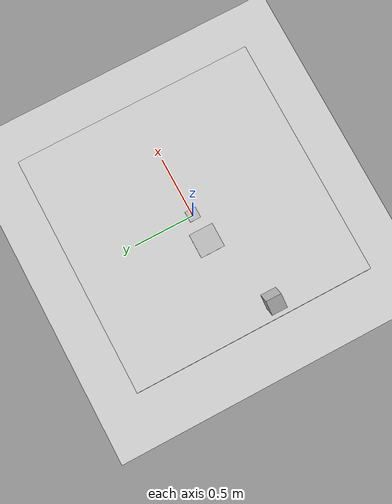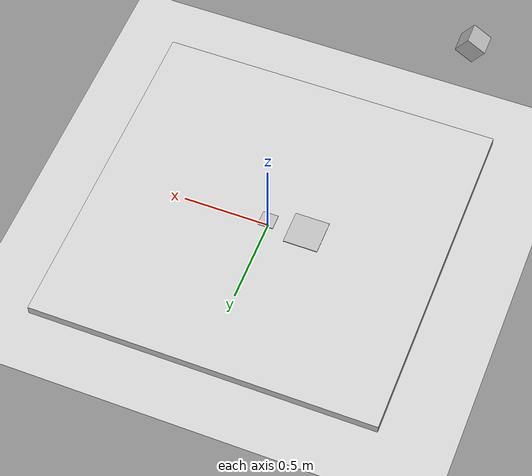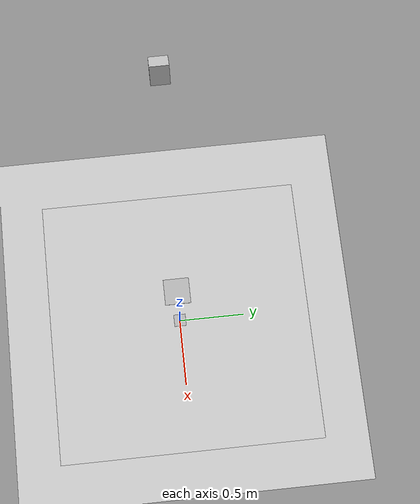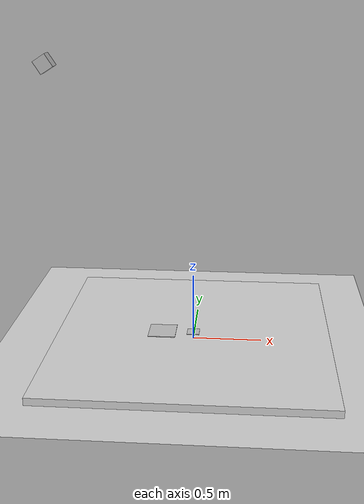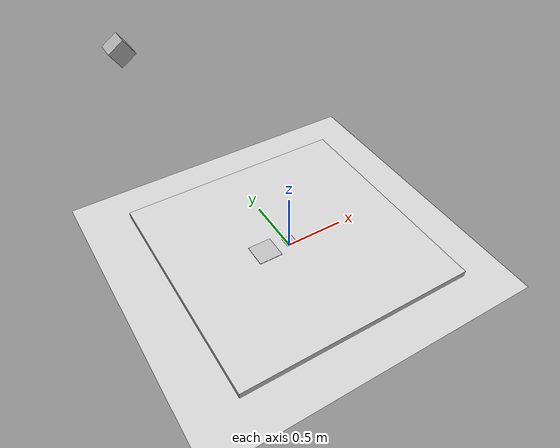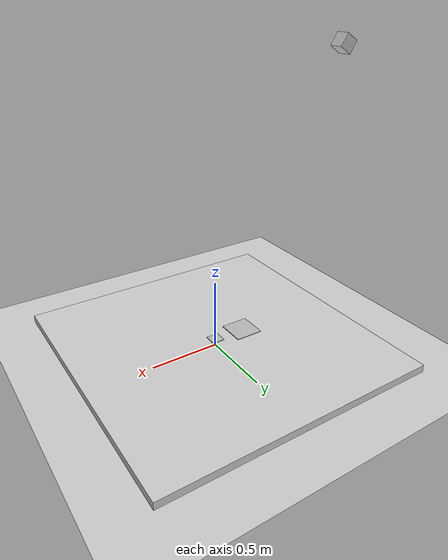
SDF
<sdf version="1.10">
 <world name="default">
  <gravity>0 0 -9.8000000000000007</gravity>
  <magnetic_field>6.0000000000000002e-06 2.3e-05 -4.1999999999999998e-05</magnetic_field>
  <atmosphere type="adiabatic"/>
  <physics type="ode">
   <max_step_size>0.001</max_step_size>
   <real_time_factor>1</real_time_factor>
   <real_time_update_rate>1000</real_time_update_rate>
  </physics>
  <scene>
   <ambient>0.400000006 0.400000006 0.400000006 1</ambient>
   <background>0.699999988 0.699999988 0.699999988 1</background>
   <shadows>true</shadows>
  </scene>
  <audio><device>default</device></audio>
  <spherical_coordinates>
   <surface_model>EARTH_WGS84</surface_model>
   <latitude_deg>0</latitude_deg>
   <longitude_deg>0</longitude_deg>
   <elevation>0</elevation>
   <heading_deg>0</heading_deg>
  </spherical_coordinates>
  <model name="ground_plane">
   <static>true</static>
   <link name="link">
    <collision name="collision">
     <geometry><plane><normal>0 0 1</normal><size>100 100</size></plane></geometry>
     <surface>
      <contact><collide_bitmask>65535</collide_bitmask></contact>
      <friction><ode><mu>100</mu><mu2>50</mu2></ode></friction>
     </surface>
    </collision>
    <visual name="visual">
     <cast_shadows>false</cast_shadows>
     <geometry><plane><normal>0 0 1</normal><size>100 100</size></plane></geometry>
     <material>
      <script><uri>file://media/materials/scripts/gazebo.material</uri><name>Gazebo/Grey</name></script>
     </material>
    </visual>
    <inertial>
     <mass>1</mass>
     <inertia><ixx>1</ixx><ixy>0</ixy><ixz>0</ixz><iyy>1</iyy><iyz>0</iyz><izz>1</izz></inertia>
    </inertial>
   </link>
  </model>
  <model name="Marker1">
   <pose>0 0 0.050000000000000003 0 0 0</pose>
   <static>true</static>
   <link name="body">
    <visual name="visual"><geometry><mesh><uri>file://Cube_Tag1_0.09m.dae</uri></mesh></geometry></visual>
    <inertial>
     <mass>1</mass>
     <inertia><ixx>1</ixx><ixy>0</ixy><ixz>0</ixz><iyy>1</iyy><iyz>0</iyz><izz>1</izz></inertia>
    </inertial>
   </link>
  </model>
  <model name="Marker2">
   <pose>-0.22792799999999999 0 0.050000000000000003 3.1415899999999999 -6.999999999999999e-06 3.1415899999999999</pose>
   <static>true</static>
   <link name="body">
    <visual name="visual"><geometry><mesh><uri>file://M01_T16h05_D0.2.dae</uri></mesh></geometry></visual>
    <inertial>
     <mass>1</mass>
     <inertia><ixx>1</ixx><ixy>0</ixy><ixz>0</ixz><iyy>1</iyy><iyz>0</iyz><izz>1</izz></inertia>
    </inertial>
   </link>
  </model>
  <model name="my_mesh3">
   <static>true</static>
   <link name="body">
    <visual name="visual"><geometry><mesh><uri>file://GreyBase.dae</uri></mesh></geometry></visual>
    <inertial>
     <mass>1</mass>
     <inertia><ixx>1</ixx><ixy>0</ixy><ixz>0</ixz><iyy>1</iyy><iyz>0</iyz><izz>1</izz></inertia>
    </inertial>
   </link>
  </model>
  <model name="camera">
   <static>true</static>
   <pose>-1 0 2 0 1 0</pose>
   <link name="link">
    <visual name="visual">
     <geometry><box><size>0.10000000000000001 0.10000000000000001 0.10000000000000001</size></box></geometry>
    </visual>
    <sensor name="my_camera" type="camera">
     <topic>__default__</topic>
     <update_rate>1</update_rate>
     <enable_metrics>false</enable_metrics>
     <camera name="__default__">
      <horizontal_fov>1.0469999999999999</horizontal_fov>
      <image>
       <width>1920</width>
       <height>1080</height>
       <format>RGB_INT8</format>
       <anti_aliasing>4</anti_aliasing>
      </image>
      <clip><near>0.10000000000000001</near><far>100</far></clip>
      <save enabled="true"><path>camera_save_tutorial</path></save>
      <visibility_mask>4294967295</visibility_mask>
      <noise><type>none</type><mean>0</mean><stddev>0</stddev></noise>
      <distortion><k1>0</k1><k2>0</k2><k3>0</k3><p1>0</p1><p2>0</p2><center>0.5 0.5</center></distortion>
      <lens>
       <type>stereographic</type>
       <scale_to_hfov>true</scale_to_hfov>
       <cutoff_angle>1.5707963267948966</cutoff_angle>
       <env_texture_size>256</env_texture_size>
      </lens>
     </camera>
    </sensor>
    <inertial>
     <mass>1</mass>
     <inertia><ixx>1</ixx><ixy>0</ixy><ixz>0</ixz><iyy>1</iyy><iyz>0</iyz><izz>1</izz></inertia>
    </inertial>
   </link>
  </model>
  <light name="sun" type="directional">
   <pose>0 0 10 0 0 0</pose>
   <intensity>1</intensity>
   <direction>-0.5 0.10000000000000001 -0.90000000000000002</direction>
   <diffuse>0.800000012 0.800000012 0.800000012 1</diffuse>
   <specular>0.200000003 0.200000003 0.200000003 1</specular>
   <attenuation>
    <range>1000</range>
    <linear>0.01</linear>
    <constant>0.90000000000000002</constant>
    <quadratic>0.001</quadratic>
   </attenuation>
   <spot><inner_angle>0</inner_angle><outer_angle>0</outer_angle><falloff>0</falloff></spot>
  </light>
  <light name="user_spot_light_0" type="spot">
   <pose>-0.099546999999999997 0.017753999999999999 1 0 0 0</pose>
   <cast_shadows>false</cast_shadows>
   <intensity>1</intensity>
   <direction>0 0 -1</direction>
   <diffuse>0.5 0.5 0.5 1</diffuse>
   <specular>0.100000001 0.100000001 0.100000001 1</specular>
   <attenuation>
    <range>20</range>
    <linear>0.01</linear>
    <constant>0.5</constant>
    <quadratic>0.001</quadratic>
   </attenuation>
   <spot><inner_angle>0.59999999999999998</inner_angle><outer_angle>1</outer_angle><falloff>1</falloff></spot>
  </light>
 </world>
</sdf>
